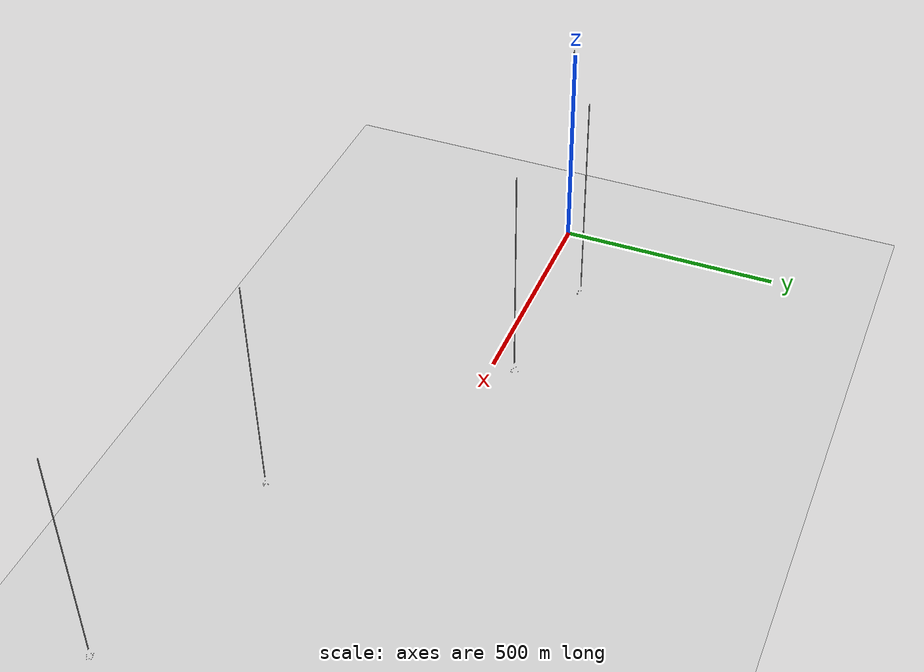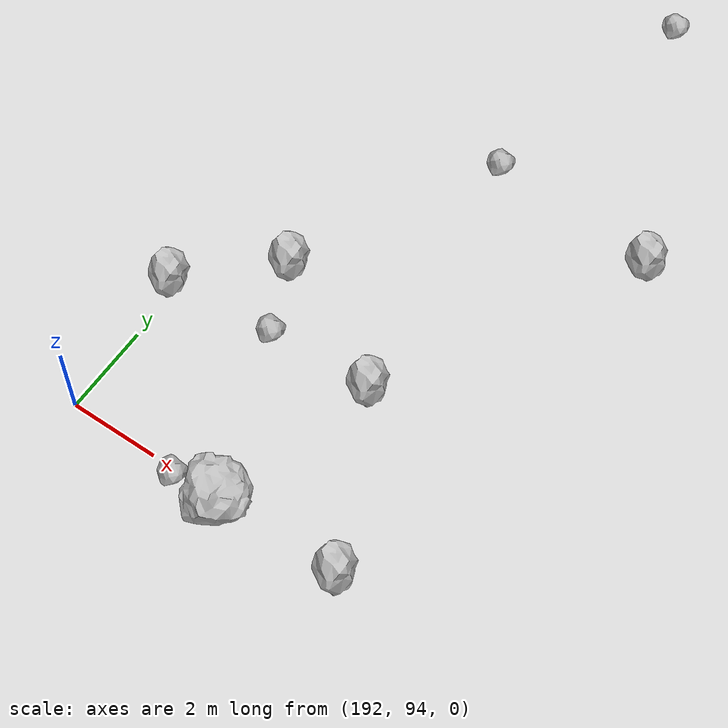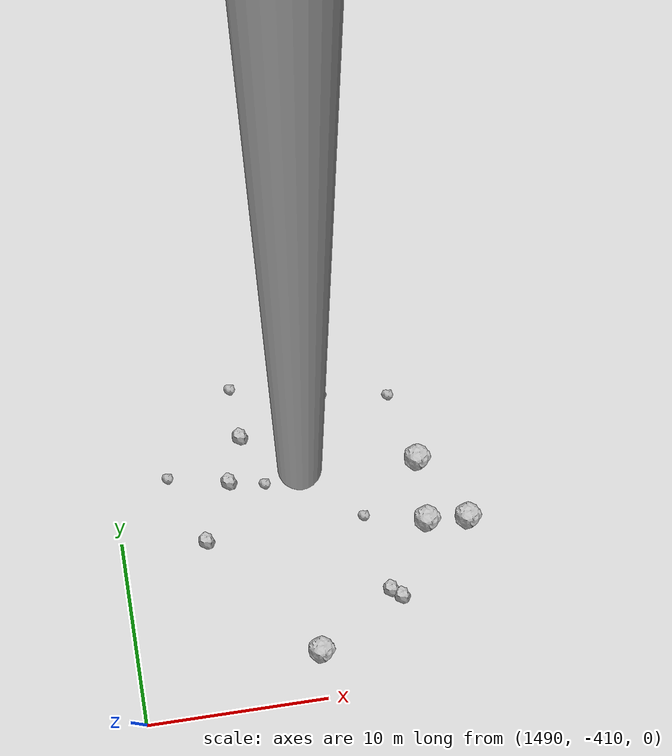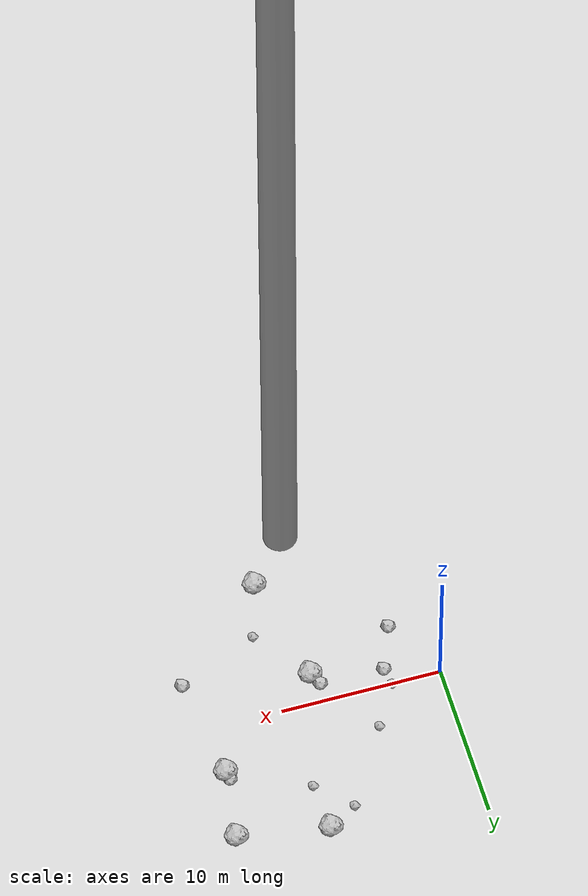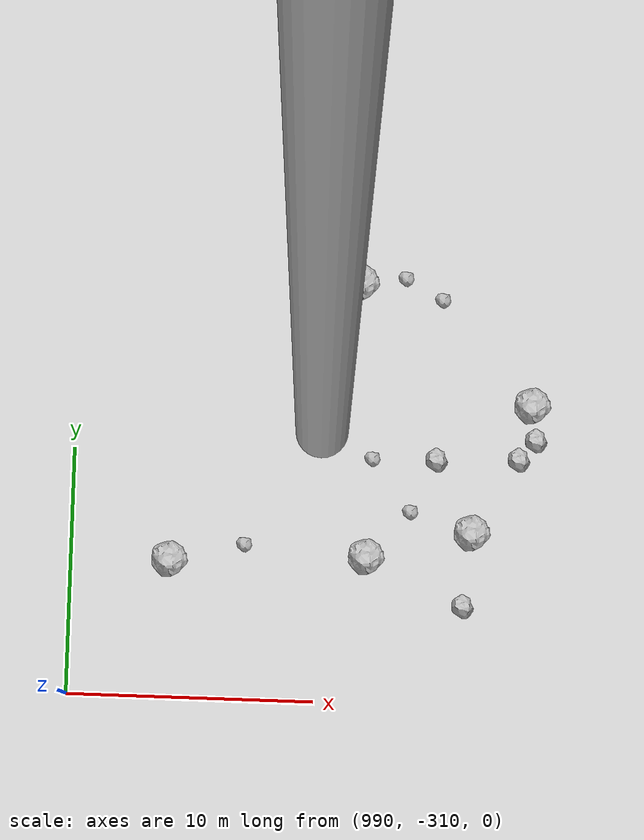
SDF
<?xml version="1.0" ?>
<sdf version="1.6">
  <world name="default">

    <include>
      <uri>model://custom_ground</uri>
    </include>

    <include>
      <uri>model://sun</uri>
    </include>

    <spherical_coordinates>
      <surface_model>EARTH_WGS84</surface_model>
      <latitude_deg>38.161479</latitude_deg>
      <longitude_deg>-122.454630</longitude_deg>
      <elevation>488.0</elevation>
      <heading_deg>90</heading_deg>
    </spherical_coordinates>

    <model name="rock1_0_0">
      <include>
        <uri>model://rock1</uri>
        <pose>15.057011524970925 7.688658327065493 0.5 0 0 0</pose>
      </include>
    </model>
    <model name="rock1_0_1">
      <include>
        <uri>model://rock1</uri>
        <pose>14.451837393143983 3.2139197189282953 0.5 0 0 0</pose>
      </include>
    </model>
    <model name="rock1_0_2">
      <include>
        <uri>model://rock1</uri>
        <pose>7.67409774668627 -1.9062122078256998 0.5 0 0 0</pose>
      </include>
    </model>
    <model name="rock1_0_3">
      <include>
        <uri>model://rock1</uri>
        <pose>9.167600051643078 -8.92062767825382 0.5 0 0 0</pose>
      </include>
    </model>
    <model name="rock1_0_4">
      <include>
        <uri>model://rock1</uri>
        <pose>9.460509432763525 8.664359659253009 0.5 0 0 0</pose>
      </include>
    </model>
    <model name="rock2_0_0">
      <include>
        <uri>model://rock2</uri>
        <pose>14.315324218685252 3.725429932358363 0.3 0 0 0</pose>
      </include>
    </model>
    <model name="rock2_0_1">
      <include>
        <uri>model://rock2</uri>
        <pose>3.2723016633120983 -1.0192410963049898 0.3 0 0 0</pose>
      </include>
    </model>
    <model name="rock2_0_2">
      <include>
        <uri>model://rock2</uri>
        <pose>15.307913095797659 -3.3148964069080193 0.3 0 0 0</pose>
      </include>
    </model>
    <model name="rock2_0_3">
      <include>
        <uri>model://rock2</uri>
        <pose>2.1617876798710833 -3.826657632023334 0.3 0 0 0</pose>
      </include>
    </model>
    <model name="rock2_0_4">
      <include>
        <uri>model://rock2</uri>
        <pose>7.25083747400584 -1.1335893996235402 0.3 0 0 0</pose>
      </include>
    </model>
    <model name="rock3_0_0">
      <include>
        <uri>model://rock3</uri>
        <pose>9.625188455552156 5.5324911132905985 0.2 0 0 0</pose>
      </include>
    </model>
    <model name="rock3_0_1">
      <include>
        <uri>model://rock3</uri>
        <pose>10.210789420111773 -5.499259555284166 0.2 0 0 0</pose>
      </include>
    </model>
    <model name="rock3_0_2">
      <include>
        <uri>model://rock3</uri>
        <pose>4.627538152528963 2.677918886644843 0.2 0 0 0</pose>
      </include>
    </model>
    <model name="rock3_0_3">
      <include>
        <uri>model://rock3</uri>
        <pose>3.0305693342683515 0.044298835773886935 0.2 0 0 0</pose>
      </include>
    </model>
    <model name="rock3_0_4">
      <include>
        <uri>model://rock3</uri>
        <pose>7.619879938678562 7.533441704152082 0.2 0 0 0</pose>
      </include>
    </model>
    <model name="rock1_1_0">
      <include>
        <uri>model://rock1</uri>
        <pose>206.55348213872804 94.26078684272872 0.5 0 0 0</pose>
      </include>
    </model>
    <model name="rock1_1_1">
      <include>
        <uri>model://rock1</uri>
        <pose>205.05708600309416 93.41489769106369 0.5 0 0 0</pose>
      </include>
    </model>
    <model name="rock1_1_2">
      <include>
        <uri>model://rock1</uri>
        <pose>208.3635469914523 94.59196927096441 0.5 0 0 0</pose>
      </include>
    </model>
    <model name="rock1_1_3">
      <include>
        <uri>model://rock1</uri>
        <pose>195.70484206891854 93.87665692238342 0.5 0 0 0</pose>
      </include>
    </model>
    <model name="rock1_1_4">
      <include>
        <uri>model://rock1</uri>
        <pose>208.0884893256831 95.36753976601881 0.5 0 0 0</pose>
      </include>
    </model>
    <model name="rock2_1_0">
      <include>
        <uri>model://rock2</uri>
        <pose>191.72450140792247 97.47984933202132 0.3 0 0 0</pose>
      </include>
    </model>
    <model name="rock2_1_1">
      <include>
        <uri>model://rock2</uri>
        <pose>193.57312159654 99.24543562492447 0.3 0 0 0</pose>
      </include>
    </model>
    <model name="rock2_1_2">
      <include>
        <uri>model://rock2</uri>
        <pose>199.81039920030756 103.54244438407831 0.3 0 0 0</pose>
      </include>
    </model>
    <model name="rock2_1_3">
      <include>
        <uri>model://rock2</uri>
        <pose>198.41090847631895 94.02925670097326 0.3 0 0 0</pose>
      </include>
    </model>
    <model name="rock2_1_4">
      <include>
        <uri>model://rock2</uri>
        <pose>196.64670683650763 97.7150929252102 0.3 0 0 0</pose>
      </include>
    </model>
    <model name="rock3_1_0">
      <include>
        <uri>model://rock3</uri>
        <pose>205.82781414210842 100.88833524859334 0.2 0 0 0</pose>
      </include>
    </model>
    <model name="rock3_1_1">
      <include>
        <uri>model://rock3</uri>
        <pose>194.5525562865106 93.86124473365088 0.2 0 0 0</pose>
      </include>
    </model>
    <model name="rock3_1_2">
      <include>
        <uri>model://rock3</uri>
        <pose>194.23840559563845 97.58457726108236 0.2 0 0 0</pose>
      </include>
    </model>
    <model name="rock3_1_3">
      <include>
        <uri>model://rock3</uri>
        <pose>195.91039375923836 103.87509304861263 0.2 0 0 0</pose>
      </include>
    </model>
    <model name="rock3_1_4">
      <include>
        <uri>model://rock3</uri>
        <pose>197.18008173285844 109.45871574691066 0.2 0 0 0</pose>
      </include>
    </model>
    <model name="rock1_2_0">
      <include>
        <uri>model://rock1</uri>
        <pose>509.45672944792466 49.2968098679482 0.5 0 0 0</pose>
      </include>
    </model>
    <model name="rock1_2_1">
      <include>
        <uri>model://rock1</uri>
        <pose>496.51388122946435 46.563482118319214 0.5 0 0 0</pose>
      </include>
    </model>
    <model name="rock1_2_2">
      <include>
        <uri>model://rock1</uri>
        <pose>494.6219557985994 49.67595891671768 0.5 0 0 0</pose>
      </include>
    </model>
    <model name="rock1_2_3">
      <include>
        <uri>model://rock1</uri>
        <pose>507.5879628719445 45.08455341098846 0.5 0 0 0</pose>
      </include>
    </model>
    <model name="rock1_2_4">
      <include>
        <uri>model://rock1</uri>
        <pose>502.76030361041956 59.50457290869534 0.5 0 0 0</pose>
      </include>
    </model>
    <model name="rock2_2_0">
      <include>
        <uri>model://rock2</uri>
        <pose>506.79653857970453 50.260518944780976 0.3 0 0 0</pose>
      </include>
    </model>
    <model name="rock2_2_1">
      <include>
        <uri>model://rock2</uri>
        <pose>492.8928000817134 43.060007885910316 0.3 0 0 0</pose>
      </include>
    </model>
    <model name="rock2_2_2">
      <include>
        <uri>model://rock2</uri>
        <pose>501.4636773205351 55.30676350967438 0.3 0 0 0</pose>
      </include>
    </model>
    <model name="rock2_2_3">
      <include>
        <uri>model://rock2</uri>
        <pose>501.9411038713009 44.36617347950414 0.3 0 0 0</pose>
      </include>
    </model>
    <model name="rock2_2_4">
      <include>
        <uri>model://rock2</uri>
        <pose>493.7707476024009 57.24491484276714 0.3 0 0 0</pose>
      </include>
    </model>
    <model name="rock3_2_0">
      <include>
        <uri>model://rock3</uri>
        <pose>490.1682534348136 50.42827179327979 0.2 0 0 0</pose>
      </include>
    </model>
    <model name="rock3_2_1">
      <include>
        <uri>model://rock3</uri>
        <pose>497.9234104931379 50.25307230810656 0.2 0 0 0</pose>
      </include>
    </model>
    <model name="rock3_2_2">
      <include>
        <uri>model://rock3</uri>
        <pose>504.7185653628339 52.81558959886041 0.2 0 0 0</pose>
      </include>
    </model>
    <model name="rock3_2_3">
      <include>
        <uri>model://rock3</uri>
        <pose>505.269654459963 54.86626841449703 0.2 0 0 0</pose>
      </include>
    </model>
    <model name="rock3_2_4">
      <include>
        <uri>model://rock3</uri>
        <pose>501.53509022316257 47.669433861286464 0.2 0 0 0</pose>
      </include>
    </model>
    <model name="rock1_3_0">
      <include>
        <uri>model://rock1</uri>
        <pose>1006.2263128597251 -302.92876648286915 0.5 0 0 0</pose>
      </include>
    </model>
    <model name="rock1_3_1">
      <include>
        <uri>model://rock1</uri>
        <pose>994.0033355051553 -304.39746228690575 0.5 0 0 0</pose>
      </include>
    </model>
    <model name="rock1_3_2">
      <include>
        <uri>model://rock1</uri>
        <pose>1001.9716162367902 -304.0388336050446 0.5 0 0 0</pose>
      </include>
    </model>
    <model name="rock1_3_3">
      <include>
        <uri>model://rock1</uri>
        <pose>1001.3954546715009 -292.9061220828869 0.5 0 0 0</pose>
      </include>
    </model>
    <model name="rock1_3_4">
      <include>
        <uri>model://rock1</uri>
        <pose>1008.511424003035 -297.68700567249346 0.5 0 0 0</pose>
      </include>
    </model>
    <model name="rock2_3_0">
      <include>
        <uri>model://rock2</uri>
        <pose>1000.2016305413565 -294.7195251488944 0.3 0 0 0</pose>
      </include>
    </model>
    <model name="rock2_3_1">
      <include>
        <uri>model://rock2</uri>
        <pose>1008.0275745323145 -299.89127433862274 0.3 0 0 0</pose>
      </include>
    </model>
    <model name="rock2_3_2">
      <include>
        <uri>model://rock2</uri>
        <pose>1005.9367956041069 -305.91367572175085 0.3 0 0 0</pose>
      </include>
    </model>
    <model name="rock2_3_3">
      <include>
        <uri>model://rock2</uri>
        <pose>1004.6882711630916 -300.00540482356996 0.3 0 0 0</pose>
      </include>
    </model>
    <model name="rock2_3_4">
      <include>
        <uri>model://rock2</uri>
        <pose>1008.6980427422496 -299.08524098686775 0.3 0 0 0</pose>
      </include>
    </model>
    <model name="rock3_3_0">
      <include>
        <uri>model://rock3</uri>
        <pose>1003.6778008935108 -302.1690758896814 0.2 0 0 0</pose>
      </include>
    </model>
    <model name="rock3_3_1">
      <include>
        <uri>model://rock3</uri>
        <pose>1004.728608196681 -293.5180259191256 0.2 0 0 0</pose>
      </include>
    </model>
    <model name="rock3_3_2">
      <include>
        <uri>model://rock3</uri>
        <pose>1002.0754791615823 -300.0624232113556 0.2 0 0 0</pose>
      </include>
    </model>
    <model name="rock3_3_3">
      <include>
        <uri>model://rock3</uri>
        <pose>1003.2064056463529 -292.687206311186 0.2 0 0 0</pose>
      </include>
    </model>
    <model name="rock3_3_4">
      <include>
        <uri>model://rock3</uri>
        <pose>996.9924808263696 -303.7122284416437 0.2 0 0 0</pose>
      </include>
    </model>
    <model name="rock1_4_0">
      <include>
        <uri>model://rock1</uri>
        <pose>1509.144109939917 -401.2529871765202 0.5 0 0 0</pose>
      </include>
    </model>
    <model name="rock1_4_1">
      <include>
        <uri>model://rock1</uri>
        <pose>1500.0625018551038 -407.34797378799163 0.5 0 0 0</pose>
      </include>
    </model>
    <model name="rock1_4_2">
      <include>
        <uri>model://rock1</uri>
        <pose>1506.8875596396135 -401.0734667466688 0.5 0 0 0</pose>
      </include>
    </model>
    <model name="rock1_4_3">
      <include>
        <uri>model://rock1</uri>
        <pose>1501.6703935366913 -393.34939137577663 0.5 0 0 0</pose>
      </include>
    </model>
    <model name="rock1_4_4">
      <include>
        <uri>model://rock1</uri>
        <pose>1506.874531196983 -397.630548618956 0.5 0 0 0</pose>
      </include>
    </model>
    <model name="rock2_4_0">
      <include>
        <uri>model://rock2</uri>
        <pose>1496.3474674331069 -397.40376128983695 0.3 0 0 0</pose>
      </include>
    </model>
    <model name="rock2_4_1">
      <include>
        <uri>model://rock2</uri>
        <pose>1494.6650630446593 -400.47775339740303 0.3 0 0 0</pose>
      </include>
    </model>
    <model name="rock2_4_2">
      <include>
        <uri>model://rock2</uri>
        <pose>1497.3099469533513 -394.99821096192954 0.3 0 0 0</pose>
      </include>
    </model>
    <model name="rock2_4_3">
      <include>
        <uri>model://rock2</uri>
        <pose>1504.8788973542414 -405.03575875648033 0.3 0 0 0</pose>
      </include>
    </model>
    <model name="rock2_4_4">
      <include>
        <uri>model://rock2</uri>
        <pose>1504.3345352531855 -404.57963325371435 0.3 0 0 0</pose>
      </include>
    </model>
    <model name="rock3_4_0">
      <include>
        <uri>model://rock3</uri>
        <pose>1503.4418538186126 -400.38814497658956 0.2 0 0 0</pose>
      </include>
    </model>
    <model name="rock3_4_1">
      <include>
        <uri>model://rock3</uri>
        <pose>1498.2872498148863 -397.8213786452147 0.2 0 0 0</pose>
      </include>
    </model>
    <model name="rock3_4_2">
      <include>
        <uri>model://rock3</uri>
        <pose>1505.7704634687893 -393.8809126105066 0.2 0 0 0</pose>
      </include>
    </model>
    <model name="rock3_4_3">
      <include>
        <uri>model://rock3</uri>
        <pose>1492.9913408540929 -396.75312814325736 0.2 0 0 0</pose>
      </include>
    </model>
    <model name="rock3_4_4">
      <include>
        <uri>model://rock3</uri>
        <pose>1497.0967937471448 -392.29504358095 0.2 0 0 0</pose>
      </include>
    </model>

    <model name="cylinder_1">
      <static>true</static>
      <link name="link">
        <visual name="visual">
          <geometry>
            <cylinder>
              <radius>1</radius>
              <length>500</length>
            </cylinder>
          </geometry>
        </visual>
      </link>
      <pose>10 0 270 0 0 0</pose>
    </model>

    <model name="cylinder_2">
      <static>true</static>
      <link name="link">
        <visual name="visual">
          <geometry>
            <cylinder>
              <radius>1</radius>
              <length>500</length>
            </cylinder>
          </geometry>
        </visual>
      </link>
      <pose>200 100 270 0 0 0</pose>
    </model>

    <model name="cylinder_3">
      <static>true</static>
      <link name="link">
        <visual name="visual">
          <geometry>
            <cylinder>
              <radius>1</radius>
              <length>500</length>
            </cylinder>
          </geometry>
        </visual>
      </link>
      <pose>500 50 270 0 0 0</pose>
    </model>

    <model name="cylinder_4">
      <static>true</static>
      <link name="link">
        <visual name="visual">
          <geometry>
            <cylinder>
              <radius>1</radius>
              <length>500</length>
            </cylinder>
          </geometry>
        </visual>
      </link>
      <pose>1000 -300 270 0 0 0</pose>
    </model>

    <model name="cylinder_5">
      <static>true</static>
      <link name="link">
        <visual name="visual">
          <geometry>
            <cylinder>
              <radius>1</radius>
              <length>500</length>
            </cylinder>
          </geometry>
        </visual>
      </link>
      <pose>1500 -400 270 0 0 0</pose>
    </model>

  </world>
</sdf>

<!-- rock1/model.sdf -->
<sdf version="1.6">
  <model name="rock1">
    <static>true</static> <!-- Set to true if the model should not move -->
    <pose>0 0 0 0 0 0</pose>

    <!--z offset is 0.5 for full scale-->

    <link name="link">
      <collision name="rock1_collision">
        <geometry>
          <mesh>
            <uri>model://meshes/rock1.dae</uri>
          </mesh>
        </geometry>
      </collision>
      <visual name="rock1_visual">
        <geometry>
          <mesh>
            <uri>model://meshes/rock1.dae</uri>
          </mesh>
        </geometry>
        <material>
          <script>
            <uri>model://materials/scripts/sand_pebbles.material</uri>
            <name>custom_ground/Image</name>
          </script>
        </material>
      </visual>
    </link>
  </model>
</sdf>

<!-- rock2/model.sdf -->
<sdf version="1.6">
  <model name="rock2">
    <static>true</static> <!-- Set to true if the model should not move -->
    <pose>0 0 0 0 0 0</pose>

    <!--z offset is 0.3 for full scale-->

    <link name="link">
      <collision name="rock2_collision">
        <geometry>
          <mesh>
            <uri>model://meshes/rock2.dae</uri>
          </mesh>
        </geometry>
      </collision>
      <visual name="rock2_visual">
        <geometry>
          <mesh>
            <uri>model://meshes/rock2.dae</uri>
          </mesh>
        </geometry>
        <material>
          <script>
            <uri>model://materials/scripts/sand_pebbles.material</uri>
            <name>custom_ground/Image</name>
          </script>
        </material>
      </visual>
    </link>
  </model>
</sdf>

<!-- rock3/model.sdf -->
<sdf version="1.6">
  <model name="rock3">
    <static>true</static> <!-- Set to true if the model should not move -->
    <pose>0 0 0 0 0 0</pose>

    <!--z offset is 0.2 for full scale-->

    <link name="link">
      <collision name="rock3_collision">
        <geometry>
          <mesh>
            <uri>model://meshes/rock3.dae</uri>
          </mesh>
        </geometry>
      </collision>
      <visual name="rock3_visual">
        <geometry>
          <mesh>
            <uri>model://meshes/rock3.dae</uri>
          </mesh>
        </geometry>
        <material>
          <script>
            <uri>model://materials/scripts/sand_pebbles.material</uri>
            <name>custom_ground/Image</name>
          </script>
        </material>
      </visual>
    </link>
  </model>
</sdf>

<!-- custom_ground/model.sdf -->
<sdf version="1.6">
  <model name="custom_ground">
    <static>true</static> <!-- Ground is static and immovable -->
    <link name="ground_link">
      <pose>240 0 0 0 0 0</pose> <!-- Position and orientation relative to the world -->
      <!-- Visual Representation -->
      <visual name="ground_visual">
        <geometry>
          <plane>
            <normal>0 0 1</normal> <!-- Upward facing plane -->
            <size>500 500</size> <!-- Size of the plane -->
          </plane>
        </geometry>
        <material>
          <script>
            <uri>model://materials/scripts/sand_pebbles.material</uri>
            <name>custom_ground/Image</name>
          </script>
        </material>
      </visual>

      <!-- Collision Representation -->
      <collision name="ground_collision">
        <geometry>
          <plane>
            <normal>0 0 1</normal>
            <size>100 100</size>
          </plane>
        </geometry>
      </collision>

    </link>
  </model>
</sdf>
